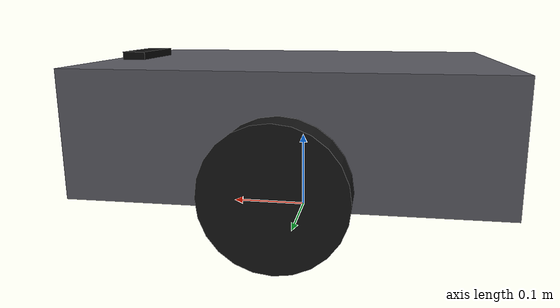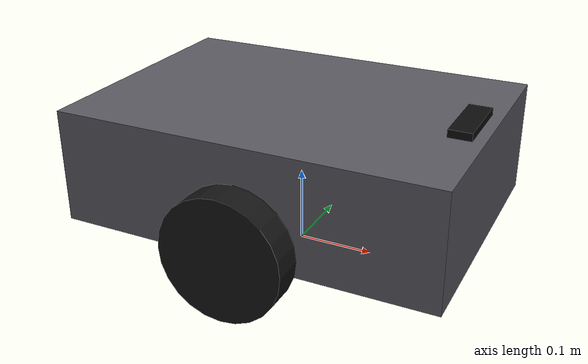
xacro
<?xml version="1.0"?>
<robot name="ugv" xmlns:xacro="http://www.ros.org/wiki/xacro">

  <xacro:property name="chassis_length" value="0.50"/>
  <xacro:property name="chassis_width" value="0.35"/>
  <xacro:property name="chassis_height" value="0.15"/>
  <xacro:property name="chassis_mass" value="12.0"/>

  <xacro:property name="wheel_radius" value="0.08"/>
  <xacro:property name="wheel_width" value="0.04"/>
  <xacro:property name="wheel_mass" value="1.2"/>
  <xacro:property name="track_width" value="0.40"/>
  <xacro:property name="wheel_x_offset" value="0.0"/>

  <xacro:property name="ground_clearance" value="0.05"/>
  <xacro:property name="base_z" value="${wheel_radius + ground_clearance}"/>

  <xacro:property name="camera_x" value="0.22"/>
  <xacro:property name="camera_z" value="0.20"/>

  <material name="chassis_grey">
    <color rgba="0.35 0.35 0.38 1.0"/>
  </material>
  <material name="wheel_black">
    <color rgba="0.08 0.08 0.08 1.0"/>
  </material>
  <material name="camera_dark">
    <color rgba="0.05 0.05 0.05 1.0"/>
  </material>

  <link name="base_footprint"/>

  <joint name="base_footprint_to_base_link" type="fixed">
    <parent link="base_footprint"/>
    <child link="base_link"/>
    <origin xyz="0 0 ${base_z}" rpy="0 0 0"/>
  </joint>

  <link name="base_link">
    <visual>
      <geometry>
        <box size="${chassis_length} ${chassis_width} ${chassis_height}"/>
      </geometry>
      <material name="chassis_grey"/>
    </visual>
    <collision>
      <geometry>
        <box size="${chassis_length} ${chassis_width} ${chassis_height}"/>
      </geometry>
    </collision>
    <inertial>
      <mass value="${chassis_mass}"/>
      <inertia ixx="0.25" ixy="0.0" ixz="0.0" iyy="0.35" iyz="0.0" izz="0.45"/>
    </inertial>
  </link>

  <xacro:macro name="wheel" params="prefix y_reflect">
    <link name="${prefix}_wheel_link">
      <visual>
        <origin xyz="0 0 0" rpy="1.5708 0 0"/>
        <geometry>
          <cylinder radius="${wheel_radius}" length="${wheel_width}"/>
        </geometry>
        <material name="wheel_black"/>
      </visual>
      <collision>
        <origin xyz="0 0 0" rpy="1.5708 0 0"/>
        <geometry>
          <cylinder radius="${wheel_radius}" length="${wheel_width}"/>
        </geometry>
      </collision>
      <inertial>
        <mass value="${wheel_mass}"/>
        <inertia ixx="0.01" ixy="0.0" ixz="0.0" iyy="0.01" iyz="0.0" izz="0.01"/>
      </inertial>
    </link>

    <joint name="${prefix}_wheel_joint" type="continuous">
      <parent link="base_link"/>
      <child link="${prefix}_wheel_link"/>
      <origin xyz="${wheel_x_offset} ${y_reflect * track_width / 2.0} ${-ground_clearance}" rpy="0 0 0"/>
      <axis xyz="0 1 0"/>
    </joint>
  </xacro:macro>

  <xacro:wheel prefix="left" y_reflect="1"/>
  <xacro:wheel prefix="right" y_reflect="-1"/>

  <!-- Rear caster: passive support, not a driven wheel. -->
  <link name="caster_wheel_link">
    <visual>
      <geometry>
        <sphere radius="${wheel_radius / 2.0}"/>
      </geometry>
      <material name="wheel_black"/>
    </visual>
    <collision>
      <geometry>
        <sphere radius="${wheel_radius / 2.0}"/>
      </geometry>
    </collision>
    <inertial>
      <mass value="0.3"/>
      <inertia ixx="0.001" ixy="0.0" ixz="0.0" iyy="0.001" iyz="0.0" izz="0.001"/>
    </inertial>
  </link>

  <joint name="caster_wheel_joint" type="fixed">
    <parent link="base_link"/>
    <child link="caster_wheel_link"/>
    <origin xyz="${-chassis_length / 2.0 + 0.03} 0 ${-ground_clearance - wheel_radius / 2.0}" rpy="0 0 0"/>
  </joint>

  <!-- Camera mount: physical link + optical frame per REP103. -->
  <link name="camera_link">
    <visual>
      <geometry>
        <box size="0.03 0.09 0.03"/>
      </geometry>
      <material name="camera_dark"/>
    </visual>
    <collision>
      <geometry>
        <box size="0.03 0.09 0.03"/>
      </geometry>
    </collision>
    <inertial>
      <mass value="0.15"/>
      <inertia ixx="0.0001" ixy="0.0" ixz="0.0" iyy="0.0001" iyz="0.0" izz="0.0001"/>
    </inertial>
  </link>

  <joint name="camera_mount_joint" type="fixed">
    <parent link="base_link"/>
    <child link="camera_link"/>
    <origin xyz="${camera_x} 0 ${camera_z - base_z}" rpy="0 0 0"/>
  </joint>

  <link name="camera_optical_frame"/>

  <joint name="camera_optical_joint" type="fixed">
    <parent link="camera_link"/>
    <child link="camera_optical_frame"/>
    <!-- REP103: optical z-forward/x-right/y-down from link's x-forward/z-up. -->
    <origin xyz="0 0 0" rpy="${-pi/2} 0 ${-pi/2}"/>
  </joint>

  <gazebo>
    <plugin name="ugv_diff_drive" filename="libgazebo_ros_diff_drive.so">
      <ros>
        <namespace></namespace>
      </ros>
      <left_joint>left_wheel_joint</left_joint>
      <right_joint>right_wheel_joint</right_joint>
      <wheel_separation>${track_width}</wheel_separation>
      <wheel_diameter>${wheel_radius * 2.0}</wheel_diameter>
      <max_wheel_torque>20</max_wheel_torque>
      <max_wheel_acceleration>3.0</max_wheel_acceleration>
      <command_topic>cmd_vel</command_topic>
      <odometry_topic>odom</odometry_topic>
      <odometry_frame>odom</odometry_frame>
      <robot_base_frame>base_footprint</robot_base_frame>
      <publish_odom>true</publish_odom>
      <publish_odom_tf>true</publish_odom_tf>
      <publish_wheel_tf>true</publish_wheel_tf>
    </plugin>
  </gazebo>

  <gazebo reference="camera_link">
    <sensor type="camera" name="ugv_sim_camera">
      <update_rate>30.0</update_rate>
      <camera>
        <horizontal_fov>1.3962634</horizontal_fov>
        <image>
          <width>1280</width>
          <height>720</height>
          <format>R8G8B8</format>
        </image>
        <clip>
          <near>0.05</near>
          <far>50</far>
        </clip>
      </camera>
      <plugin name="ugv_sim_camera_driver" filename="libgazebo_ros_camera.so">
        <ros>
          <namespace></namespace>
          <remapping>image_raw:=camera/image_raw</remapping>
          <remapping>camera_info:=camera/camera_info</remapping>
        </ros>
        <frame_name>camera_optical_frame</frame_name>
      </plugin>
    </sensor>
  </gazebo>

</robot>
